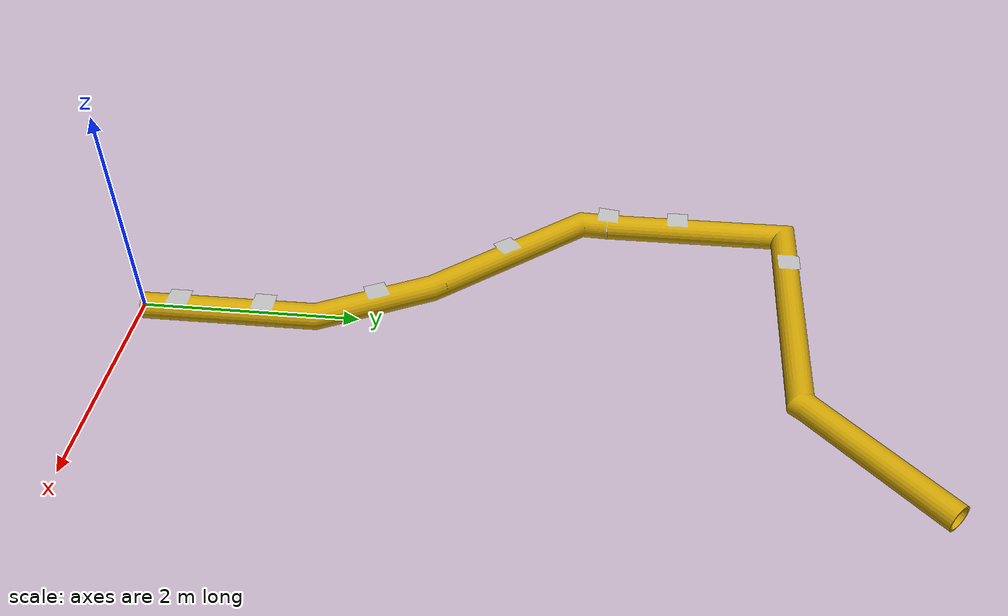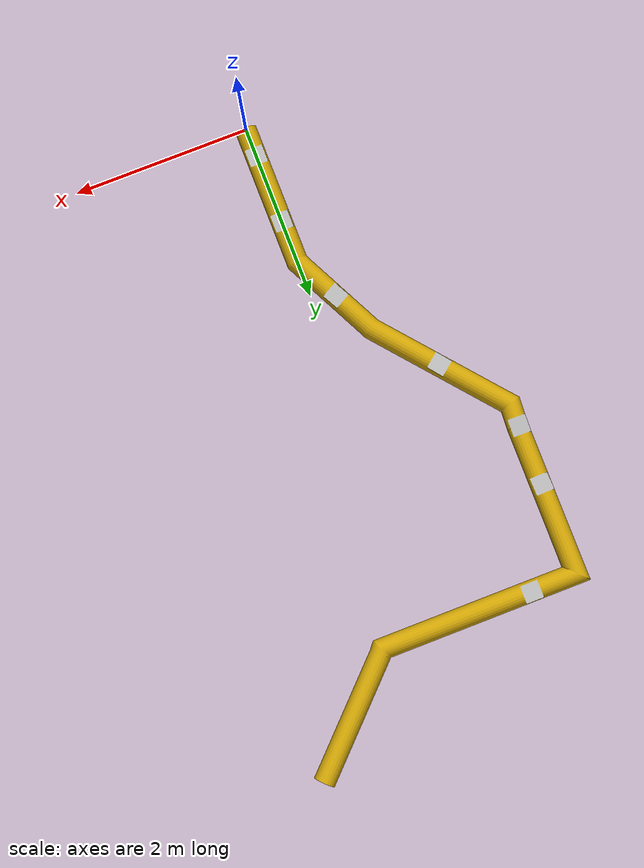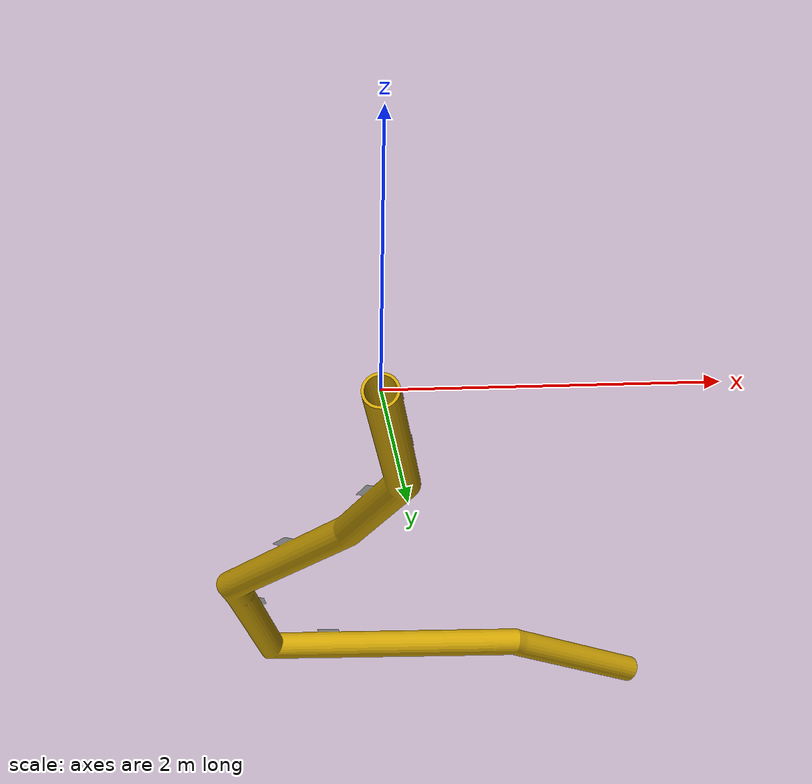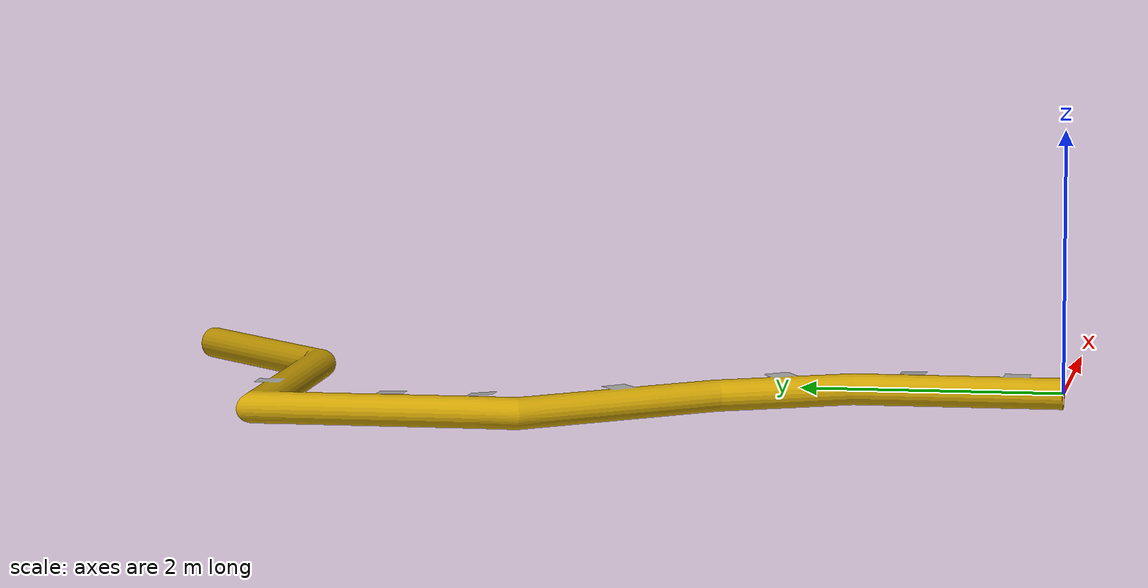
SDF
<?xml version="1.0"?>
<sdf version="1.6">
  <model name="tac_pipe">
    <static>true</static>
    <link name="link">
      <pose>0 0 0 0 0 0</pose>
      <visual name="visual">
        <geometry>
          <mesh>
            <uri>model://tac_pipe/tac_pipe_with_markers.dae</uri>
            <scale>0.1 0.1 0.1</scale>
          </mesh>
        </geometry>
      </visual>
      <collision name="collision">
        <geometry>
          <mesh>
            <uri>model://tac_pipe/tac_pipe_with_markers.dae</uri>
            <scale>0.001 0.001 0.001</scale>
          </mesh>
        </geometry>
      </collision>
    </link>
  </model>
</sdf>
